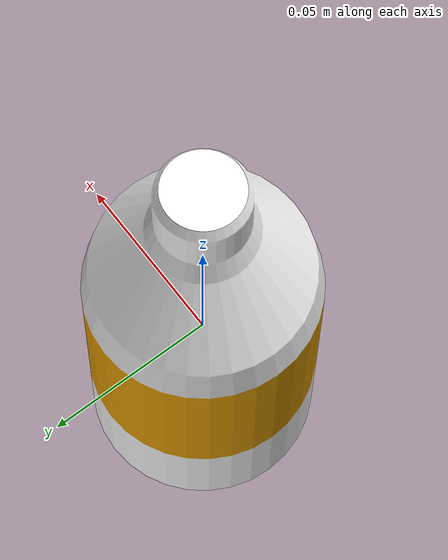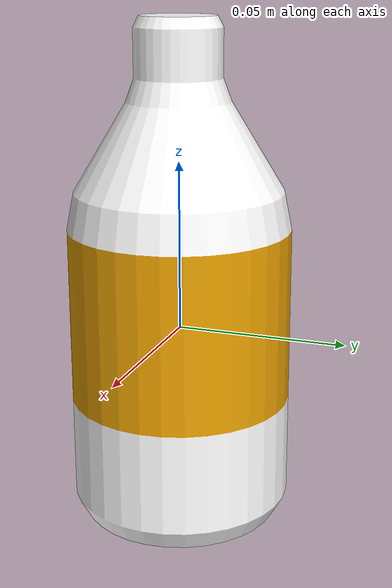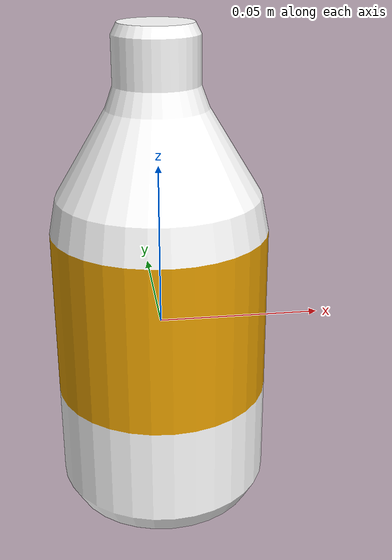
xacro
<robot name="test_bottle">
    <link name="test_bottle">
        <inertial>
            <origin xyz="0 0 0" rpy="0 0 0"/>
            <mass value="1"/>
            <inertia ixx="1" ixy="0" ixz="0" iyy="1" iyz="0" izz="1"/>
        </inertial>
        <visual>
            <origin xyz="0 0 0" rpy="0 0 0"/>
            <geometry>
                <mesh filename="package://tiago_barkeeper_world/meshes/test_bottle.dae"/>
            </geometry>
        </visual>
        <collision>
            <origin xyz="0 0 0" rpy="0 0 0"/>
            <geometry>
                <mesh filename="package://tiago_barkeeper_world/meshes/test_bottle.dae"/>
            </geometry>
        </collision>
    </link>
    <gazebo><static>true</static></gazebo>
    <gazebo reference="test_bottle">
        <mu1>1.0</mu1>
        <mu2>1.0</mu2>
    </gazebo>
</robot>
